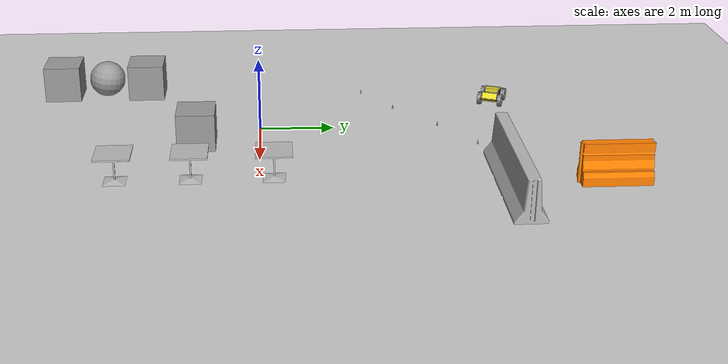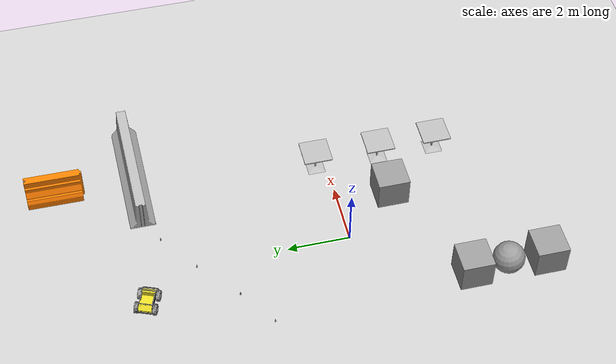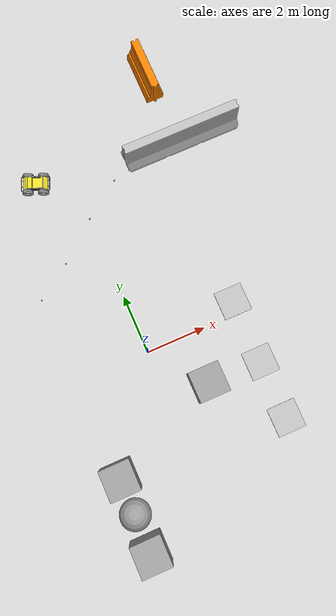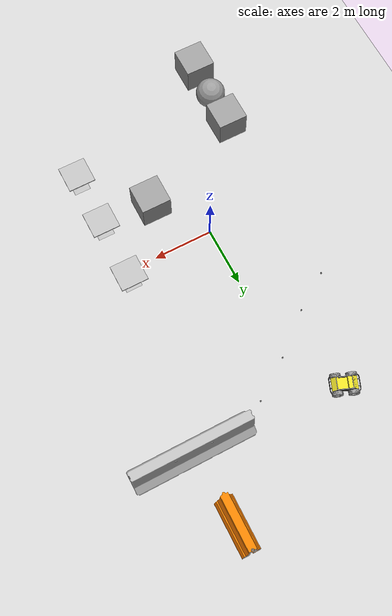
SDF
<sdf version="1.6">
 <world name="default">
  <light name="sun" type="directional">
   <pose>0 0 15 0 -0 0</pose>
   <diffuse>1 1 1 1</diffuse>
   <specular>0.1 0.1 0.1 1</specular>
   <attenuation>
    <range>1000</range>
    <constant>0.9</constant>
    <linear>0.01</linear>
    <quadratic>0.001</quadratic>
   </attenuation>
   <direction>-0.5 0.5 -1</direction>
  </light>
  <model name="ground_plane">
   <static>1</static>
   <link name="link">
    <collision name="collision">
     <geometry><plane><normal>0 0 1</normal><size>100 100</size></plane></geometry>
     <surface><friction><ode><mu>100</mu><mu2>50</mu2></ode></friction></surface>
    </collision>
    <visual name="visual">
     <transparency>1</transparency>
     <cast_shadows>0</cast_shadows>
     <geometry><plane><normal>0 0 1</normal><size>100 100</size></plane></geometry>
     <material>
      <script><uri>file://media/materials/scripts/gazebo.material</uri><name>Gazebo/Grey</name></script>
     </material>
    </visual>
   </link>
  </model>
  <gravity>0 0 -9.8</gravity>
  <magnetic_field>6e-06 2.3e-05 -4.2e-05</magnetic_field>
  <atmosphere type="adiabatic"/>
  <physics name="default_physics" default="0" type="ode">
   <max_step_size>0.001</max_step_size>
   <real_time_factor>1</real_time_factor>
   <real_time_update_rate>1000</real_time_update_rate>
  </physics>
  <scene><ambient>0.4 0.4 0.4 1</ambient><background>0.7 0.7 0.7 1</background><shadows>1</shadows></scene>
  <spherical_coordinates>
   <surface_model>EARTH_WGS84</surface_model>
   <latitude_deg>0</latitude_deg>
   <longitude_deg>0</longitude_deg>
   <elevation>0</elevation>
   <heading_deg>0</heading_deg>
  </spherical_coordinates>
  <model name="jersey_barrier">
   <static>1</static>
   <link name="link">
    <visual name="visual">
     <geometry>
      <mesh><uri>model://jersey_barrier/meshes/jersey_barrier.dae</uri><scale>1 1 1</scale></mesh>
     </geometry>
    </visual>
    <collision name="upright">
     <pose>0 0 0.5715 0 -0 0</pose>
     <geometry><box><size>4.06542 0.3063 1.143</size></box></geometry>
    </collision>
    <collision name="base">
     <pose>0 0 0.032258 0 -0 0</pose>
     <geometry><box><size>4.06542 0.8107 0.064516</size></box></geometry>
    </collision>
    <collision name="base2">
     <pose>0 0 0.1 0 -0 0</pose>
     <geometry><box><size>4.06542 0.65 0.1</size></box></geometry>
    </collision>
    <collision name="base3">
     <pose>0 0 0.2 0 -0 0</pose>
     <geometry><box><size>4.06542 0.5 0.1</size></box></geometry>
    </collision>
    <collision name="left-angle">
     <pose>0 -0.224 0.2401 0.9 -0 0</pose>
     <geometry><box><size>4.06542 0.5 0.064516</size></box></geometry>
    </collision>
    <collision name="right-angle">
     <pose>0 0.224 0.2401 -0.9 0 0</pose>
     <geometry><box><size>4.06542 0.5 0.064516</size></box></geometry>
    </collision>
   </link>
   <pose>3.88389 6.23148 0 0 -0 0</pose>
  </model>
  <model name="husky">
   <static>1</static>
   <pose>-1.20466 6.58606 0.332554 1e-06 -1e-06 -0.375291</pose>
   <link name="base_link">
    <collision name="collision">
     <pose>0 0 0.1 0 -0 0</pose>
     <geometry><box><size>1.0074 0.5709 0.2675</size></box></geometry>
    </collision>
    <inertial>
     <mass>33.855</mass>
     <pose>-0.085613 -0.00084 0.238145 0 -0 0</pose>
     <inertia>
      <ixx>2.2343</ixx>
      <ixy>-0.023642</ixy>
      <ixz>0.275174</ixz>
      <iyy>3.42518</iyy>
      <iyz>0.00239624</iyz>
      <izz>2.1241</izz>
     </inertia>
    </inertial>
    <visual name="base">
     <geometry><mesh><uri>model://husky/meshes/base_link.stl</uri><scale>1 1 1</scale></mesh></geometry>
     <material><script><name>Gazebo/FlatBlack</name><uri>__default__</uri></script></material>
    </visual>
    <visual name="top_plate">
     <geometry><mesh><uri>model://husky/meshes/top_plate.stl</uri><scale>1 1 1</scale></mesh></geometry>
     <material><script><name>Gazebo/Yellow</name><uri>__default__</uri></script></material>
    </visual>
    <visual name="front_bumper">
     <pose>0.47 0 0.091 0 -0 0</pose>
     <geometry><mesh><uri>model://husky/meshes/bumper.stl</uri><scale>1 1 1</scale></mesh></geometry>
     <material><script><name>Gazebo/FlatBlack</name><uri>__default__</uri></script></material>
    </visual>
    <visual name="rear_bumper">
     <pose>-0.47 0 0.091 0 -0 3.141</pose>
     <geometry><mesh><uri>model://husky/meshes/bumper.stl</uri><scale>1 1 1</scale></mesh></geometry>
     <material><script><name>Gazebo/FlatBlack</name><uri>__default__</uri></script></material>
    </visual>
    <visual name="user_rail">
     <pose>0.272 0 0.245 0 -0 0</pose>
     <geometry><mesh><uri>model://husky/meshes/user_rail.stl</uri><scale>1 1 1</scale></mesh></geometry>
     <material><script><name>Gazebo/Grey</name><uri>__default__</uri></script></material>
    </visual>
   </link>
   <link name="back_left_wheel">
    <pose>-0.256 0.285475 0.035 0 -0 0</pose>
    <inertial>
     <mass>2.6357</mass>
     <inertia>
      <ixx>0.0246688</ixx>
      <ixy>0</ixy>
      <ixz>0</ixz>
      <iyy>0.0246688</iyy>
      <iyz>0</iyz>
      <izz>0.0441058</izz>
     </inertia>
    </inertial>
    <collision name="back_left_wheel_collision">
     <pose>0 0 0 -1.5707 0 0</pose>
     <geometry><cylinder><radius>0.17775</radius><length>0.1143</length></cylinder></geometry>
     <surface>
      <friction><ode><mu>100000</mu><mu2>100000</mu2><slip1>0</slip1><slip2>0</slip2></ode></friction>
     </surface>
    </collision>
    <visual name="back_left_wheel">
     <pose>0 0 0 -3.14159 0 0</pose>
     <geometry><mesh><uri>model://husky/meshes/wheel.stl</uri><scale>1 1 1</scale></mesh></geometry>
     <material><script><name>Gazebo/Grey</name><uri>__default__</uri></script></material>
    </visual>
   </link>
   <joint name="back_left_joint" type="revolute">
    <parent>base_link</parent>
    <child>back_left_wheel</child>
    <axis>
     <xyz>0 1 0</xyz>
     <use_parent_model_frame>1</use_parent_model_frame>
     <limit><lower>-1e+16</lower><upper>1e+16</upper></limit>
     <dynamics><spring_reference>0</spring_reference><spring_stiffness>0</spring_stiffness></dynamics>
    </axis>
    <physics><ode><limit><cfm>0</cfm><erp>0.9</erp></limit></ode></physics>
   </joint>
   <link name="back_right_wheel">
    <pose>-0.256 -0.285475 0.035 0 -0 0</pose>
    <inertial>
     <mass>2.6357</mass>
     <inertia>
      <ixx>0.0246688</ixx>
      <ixy>0</ixy>
      <ixz>0</ixz>
      <iyy>0.0246688</iyy>
      <iyz>0</iyz>
      <izz>0.0441058</izz>
     </inertia>
    </inertial>
    <collision name="back_right_wheel_collision">
     <pose>0 0 0 -1.5707 0 0</pose>
     <geometry><cylinder><radius>0.17775</radius><length>0.1143</length></cylinder></geometry>
     <surface>
      <friction><ode><mu>100000</mu><mu2>100000</mu2><slip1>0</slip1><slip2>0</slip2></ode></friction>
     </surface>
    </collision>
    <visual name="back_right_wheel">
     <pose>0 0 0 -3.14159 0 0</pose>
     <geometry><mesh><uri>model://husky/meshes/wheel.stl</uri><scale>1 1 1</scale></mesh></geometry>
     <material><script><name>Gazebo/Grey</name><uri>__default__</uri></script></material>
    </visual>
   </link>
   <joint name="back_right_joint" type="revolute">
    <parent>base_link</parent>
    <child>back_right_wheel</child>
    <axis>
     <xyz>0 1 0</xyz>
     <use_parent_model_frame>1</use_parent_model_frame>
     <limit><lower>-1e+16</lower><upper>1e+16</upper></limit>
     <dynamics><spring_reference>0</spring_reference><spring_stiffness>0</spring_stiffness></dynamics>
    </axis>
    <physics><ode><limit><cfm>0</cfm><erp>0.9</erp></limit></ode></physics>
   </joint>
   <link name="front_left_wheel">
    <pose>0.256 0.285475 0.035 0 -0 0</pose>
    <inertial>
     <mass>2.6357</mass>
     <inertia>
      <ixx>0.0246688</ixx>
      <ixy>0</ixy>
      <ixz>0</ixz>
      <iyy>0.0246688</iyy>
      <iyz>0</iyz>
      <izz>0.0441058</izz>
     </inertia>
    </inertial>
    <collision name="front_left_wheel_collision">
     <pose>0 0 0 -1.5707 0 0</pose>
     <geometry><cylinder><radius>0.17775</radius><length>0.1143</length></cylinder></geometry>
     <surface>
      <friction><ode><mu>100000</mu><mu2>100000</mu2><slip1>0</slip1><slip2>0</slip2></ode></friction>
     </surface>
    </collision>
    <visual name="front_left_wheel">
     <pose>0 0 0 -3.14159 0 0</pose>
     <geometry><mesh><uri>model://husky/meshes/wheel.stl</uri><scale>1 1 1</scale></mesh></geometry>
     <material><script><name>Gazebo/Grey</name><uri>__default__</uri></script></material>
    </visual>
   </link>
   <joint name="front_left_joint" type="revolute">
    <parent>base_link</parent>
    <child>front_left_wheel</child>
    <axis>
     <xyz>0 1 0</xyz>
     <use_parent_model_frame>1</use_parent_model_frame>
     <limit><lower>-1e+16</lower><upper>1e+16</upper></limit>
     <dynamics><spring_reference>0</spring_reference><spring_stiffness>0</spring_stiffness></dynamics>
    </axis>
    <physics><ode><limit><cfm>0</cfm><erp>0.9</erp></limit></ode></physics>
   </joint>
   <link name="front_right_wheel">
    <pose>0.256 -0.285475 0.035 0 -0 0</pose>
    <inertial>
     <mass>2.6357</mass>
     <inertia>
      <ixx>0.0246688</ixx>
      <ixy>0</ixy>
      <ixz>0</ixz>
      <iyy>0.0246688</iyy>
      <iyz>0</iyz>
      <izz>0.0441058</izz>
     </inertia>
    </inertial>
    <collision name="front_right_wheel_collision">
     <pose>0 0 0 -1.5707 0 0</pose>
     <geometry><cylinder><radius>0.17775</radius><length>0.1143</length></cylinder></geometry>
     <surface>
      <friction><ode><mu>100000</mu><mu2>100000</mu2><slip1>0</slip1><slip2>0</slip2></ode></friction>
     </surface>
    </collision>
    <visual name="front_right_wheel">
     <pose>0 0 0 -3.14159 0 0</pose>
     <geometry><mesh><uri>model://husky/meshes/wheel.stl</uri><scale>1 1 1</scale></mesh></geometry>
     <material><script><name>Gazebo/Grey</name><uri>__default__</uri></script></material>
    </visual>
   </link>
   <joint name="front_right_joint" type="revolute">
    <parent>base_link</parent>
    <child>front_right_wheel</child>
    <axis>
     <xyz>0 1 0</xyz>
     <use_parent_model_frame>1</use_parent_model_frame>
     <limit><lower>-1e+16</lower><upper>1e+16</upper></limit>
     <dynamics><spring_reference>0</spring_reference><spring_stiffness>0</spring_stiffness></dynamics>
    </axis>
    <physics><ode><limit><cfm>0</cfm><erp>0.9</erp></limit></ode></physics>
   </joint>
   <plugin name="husky_diff_controller" filename="libhusky_gazebo_plugins.so">
    <alwaysOn>true</alwaysOn>
    <updateRate>100.0</updateRate>
    <backLeftJoint>back_left_joint</backLeftJoint>
    <backRightJoint>back_right_joint</backRightJoint>
    <frontLeftJoint>front_left_joint</frontLeftJoint>
    <frontRightJoint>front_right_joint</frontRightJoint>
    <wheelSeparation>0.5709</wheelSeparation>
    <wheelDiameter>0.3555</wheelDiameter>
    <torque>35</torque>
   </plugin>
  </model>
  <model name="Construction Cone">
   <static>1</static>
   <link name="link">
    <collision name="collision">
     <geometry>
      <mesh><scale>1 1 1</scale><uri>model://construction_cone/meshes/construction_cone.dae</uri></mesh>
     </geometry>
    </collision>
    <visual name="visual">
     <geometry>
      <mesh><scale>1 1 1</scale><uri>model://construction_cone/meshes/construction_cone.dae</uri></mesh>
     </geometry>
    </visual>
   </link>
   <pose>-2.5237 2.96091 0 0 -0 0</pose>
  </model>
  <model name="Construction Cone_0">
   <static>1</static>
   <link name="link">
    <collision name="collision">
     <geometry>
      <mesh><scale>1 1 1</scale><uri>model://construction_cone/meshes/construction_cone.dae</uri></mesh>
     </geometry>
    </collision>
    <visual name="visual">
     <geometry>
      <mesh><scale>1 1 1</scale><uri>model://construction_cone/meshes/construction_cone.dae</uri></mesh>
     </geometry>
    </visual>
   </link>
   <pose>-1.32374 3.77661 0 0 -0 0</pose>
  </model>
  <model name="Construction Cone_1">
   <static>1</static>
   <link name="link">
    <collision name="collision">
     <geometry>
      <mesh><scale>1 1 1</scale><uri>model://construction_cone/meshes/construction_cone.dae</uri></mesh>
     </geometry>
    </collision>
    <visual name="visual">
     <geometry>
      <mesh><scale>1 1 1</scale><uri>model://construction_cone/meshes/construction_cone.dae</uri></mesh>
     </geometry>
    </visual>
   </link>
   <pose>-0.011421 4.87844 0 0 -0 0</pose>
  </model>
  <model name="Construction Cone_2">
   <static>1</static>
   <link name="link">
    <collision name="collision">
     <geometry>
      <mesh><scale>1 1 1</scale><uri>model://construction_cone/meshes/construction_cone.dae</uri></mesh>
     </geometry>
    </collision>
    <visual name="visual">
     <geometry>
      <mesh><scale>1 1 1</scale><uri>model://construction_cone/meshes/construction_cone.dae</uri></mesh>
     </geometry>
    </visual>
   </link>
   <pose>1.26814 5.78491 0 0 -0 0</pose>
  </model>
  <model name="unit_box_0">
   <static>1</static>
   <pose>1.33505 -1.64008 0.684367 -0.001764 0 0</pose>
   <link name="link">
    <inertial>
     <mass>1</mass>
     <inertia>
      <ixx>0.166667</ixx>
      <ixy>0</ixy>
      <ixz>0</ixz>
      <iyy>0.166667</iyy>
      <iyz>0</iyz>
      <izz>0.166667</izz>
     </inertia>
    </inertial>
    <collision name="collision"><geometry><box><size>1 1 1</size></box></geometry></collision>
    <visual name="visual">
     <geometry><box><size>1 1 1</size></box></geometry>
     <material>
      <script><name>Gazebo/Grey</name><uri>file://media/materials/scripts/gazebo.material</uri></script>
     </material>
    </visual>
   </link>
  </model>
  <model name="unit_box_1">
   <static>1</static>
   <pose>-2.31864 -5.59675 0.6898 0 -0 1.5e-05</pose>
   <link name="link">
    <inertial>
     <mass>1</mass>
     <inertia>
      <ixx>0.166667</ixx>
      <ixy>0</ixy>
      <ixz>0</ixz>
      <iyy>0.166667</iyy>
      <iyz>0</iyz>
      <izz>0.166667</izz>
     </inertia>
    </inertial>
    <collision name="collision"><geometry><box><size>1 1 1</size></box></geometry></collision>
    <visual name="visual">
     <geometry><box><size>1 1 1</size></box></geometry>
     <material>
      <script><name>Gazebo/Grey</name><uri>file://media/materials/scripts/gazebo.material</uri></script>
     </material>
    </visual>
   </link>
  </model>
  <model name="unit_box_2">
   <static>1</static>
   <pose>-2.3187 -3.23893 0.6898 0 0 -1e-06</pose>
   <link name="link">
    <inertial>
     <mass>1</mass>
     <inertia>
      <ixx>0.166667</ixx>
      <ixy>0</ixy>
      <ixz>0</ixz>
      <iyy>0.166667</iyy>
      <iyz>0</iyz>
      <izz>0.166667</izz>
     </inertia>
    </inertial>
    <collision name="collision"><geometry><box><size>1 1 1</size></box></geometry></collision>
    <visual name="visual">
     <geometry><box><size>1 1 1</size></box></geometry>
     <material>
      <script><name>Gazebo/Grey</name><uri>file://media/materials/scripts/gazebo.material</uri></script>
     </material>
    </visual>
   </link>
  </model>
  <model name="unit_sphere_0">
   <static>1</static>
   <pose>-2.31121 -4.37542 0.6898 -0.160194 0.003686 -0.014085</pose>
   <link name="link">
    <inertial>
     <mass>1</mass>
     <inertia><ixx>0.1</ixx><ixy>0</ixy><ixz>0</ixz><iyy>0.1</iyy><iyz>0</iyz><izz>0.1</izz></inertia>
    </inertial>
    <collision name="collision"><geometry><sphere><radius>0.5</radius></sphere></geometry></collision>
    <visual name="visual">
     <geometry><sphere><radius>0.5</radius></sphere></geometry>
     <material>
      <script><name>Gazebo/Grey</name><uri>file://media/materials/scripts/gazebo.material</uri></script>
     </material>
    </visual>
   </link>
  </model>
  <model name="cafe_table">
   <static>1</static>
   <link name="link">
    <collision name="surface">
     <pose>0 0 0.755 0 -0 0</pose>
     <geometry><box><size>0.913 0.913 0.04</size></box></geometry>
    </collision>
    <collision name="column">
     <pose>0 0 0.37 0 -0 0</pose>
     <geometry><box><size>0.042 0.042 0.74</size></box></geometry>
    </collision>
    <collision name="base">
     <pose>0 0 0.02 0 -0 0</pose>
     <geometry><box><size>0.56 0.56 0.04</size></box></geometry>
    </collision>
    <visual name="visual">
     <geometry><mesh><uri>model://cafe_table/meshes/cafe_table.dae</uri><scale>1 1 1</scale></mesh></geometry>
    </visual>
   </link>
   <pose>3.09171 -3.5928 0 0 -0 0</pose>
  </model>
  <model name="cafe_table_0">
   <static>1</static>
   <link name="link">
    <collision name="surface">
     <pose>0 0 0.755 0 -0 0</pose>
     <geometry><box><size>0.913 0.913 0.04</size></box></geometry>
    </collision>
    <collision name="column">
     <pose>0 0 0.37 0 -0 0</pose>
     <geometry><box><size>0.042 0.042 0.74</size></box></geometry>
    </collision>
    <collision name="base">
     <pose>0 0 0.02 0 -0 0</pose>
     <geometry><box><size>0.56 0.56 0.04</size></box></geometry>
    </collision>
    <visual name="visual">
     <geometry><mesh><uri>model://cafe_table/meshes/cafe_table.dae</uri><scale>1 1 1</scale></mesh></geometry>
    </visual>
   </link>
   <pose>3.08741 -1.71795 0 0 -0 0</pose>
  </model>
  <model name="cafe_table_1">
   <static>1</static>
   <link name="link">
    <collision name="surface">
     <pose>0 0 0.755 0 -0 0</pose>
     <geometry><box><size>0.913 0.913 0.04</size></box></geometry>
    </collision>
    <collision name="column">
     <pose>0 0 0.37 0 -0 0</pose>
     <geometry><box><size>0.042 0.042 0.74</size></box></geometry>
    </collision>
    <collision name="base">
     <pose>0 0 0.02 0 -0 0</pose>
     <geometry><box><size>0.56 0.56 0.04</size></box></geometry>
    </collision>
    <visual name="visual">
     <geometry><mesh><uri>model://cafe_table/meshes/cafe_table.dae</uri><scale>1 1 1</scale></mesh></geometry>
    </visual>
   </link>
   <pose>3.08989 0.359448 0 0 -0 0</pose>
  </model>
  <model name="drc_practice_organge_jersey_barrier">
   <static>1</static>
   <link name="link">
    <visual name="visual">
     <geometry>
      <mesh>
       <uri>model://drc_practice_orange_jersey_barrier/meshes/jersey_barrier.dae</uri>
       <scale>1 1 1</scale>
      </mesh>
     </geometry>
    </visual>
    <collision name="collision">
     <geometry>
      <mesh>
       <uri>model://drc_practice_orange_jersey_barrier/meshes/jersey_barrier.dae</uri>
       <scale>1 1 1</scale>
      </mesh>
     </geometry>
    </collision>
   </link>
   <pose>3.70574 8.78295 0 0 -0 0</pose>
  </model>
 </world>
</sdf>
